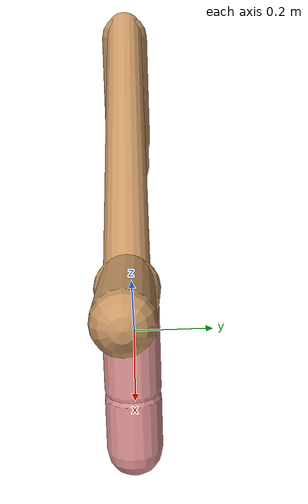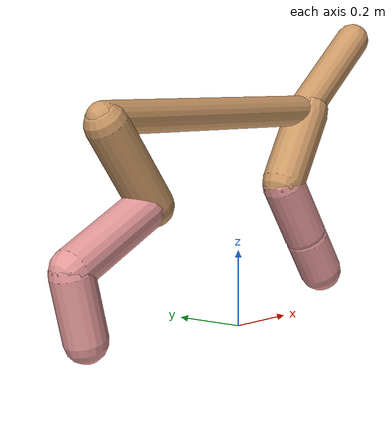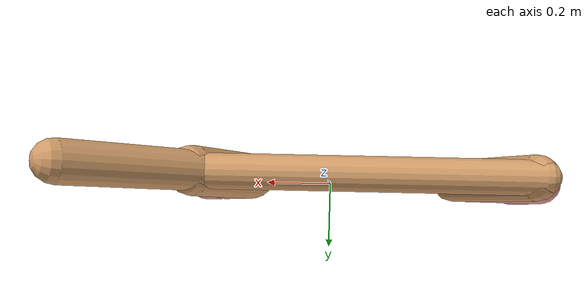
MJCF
<mujoco model="cheetah">
  <compiler angle="radian" coordinate="local" inertiafromgeom="true" settotalmass="14" />
  <default>
    <joint armature=".1" damping=".01" limited="true" solimplimit="0 .8 .03" solreflimit=".02 1" stiffness="8" />
    <geom conaffinity="0" condim="3" contype="1" friction="0.8 .1 .1" rgba="0.8 0.6 .4 1" solimp="0.0 0.8 0.01" solref="0.02 1" />
    <motor ctrllimited="true" ctrlrange="-1 1" />
  </default>
  <size nstack="300000" nuser_geom="1" />
  <option gravity="0 0 -9.81" timestep="0.01" />
  <worldbody>
    <body name="torso" pos="0.0 0.0 0.5593201911781556">
      <joint armature="0" axis="1 0 0" damping="0" limited="false" name="ignorex" pos="0 0 0" stiffness="0" type="slide" />
      <joint armature="0" axis="0 0 1" damping="0" limited="false" name="ignorez" pos="0 0 0" stiffness="0" type="slide" />
      <joint armature="0" axis="0 1 0" damping="0" limited="false" name="ignorey" pos="0 0 0" stiffness="0" type="hinge" />
      <geom fromto="-0.5 0.0 0.0 0.3071017688299933 0.0 0.0" name="torso" size="0.04134811763591109" type="capsule" />
      <geom axisangle="0 1 0 .87" name="head" pos="0.40710176882999327 0.0 0.1" size="0.04679679818087789 0.15" type="capsule" />

      <body name="bthigh" pos="-.5 0 0">
        <joint axis="0 1 0" damping="6" name="bthigh" pos="0 0 0" range="-.52 1.05" stiffness="240" type="hinge" />
        <geom axisangle="0 1 0 -3.8" name="bthigh" pos="0.08945997540289947 0.0 -0.11629796802376932" size="0.05454957255890358 0.1277130743396886" type="capsule" />
        <body name="bshin" pos="0.13891995080579894 0.0 -0.22259593604753863">
          <joint axis="0 1 0" damping="4.5" name="bshin" pos="0 0 0" range="-.785 .785" stiffness="180" type="hinge" />
          <geom axisangle="0 1 0 -2.03" name="bshin" pos="-0.12400493480064483 0.0 -0.06200246740032241" rgba="0.9 0.6 0.6 1" size="0.05454957255890358 0.1321169734548503" type="capsule" />
          <body name="bfoot" pos="-0.24800986960128965 0.0 -0.12400493480064483">
            <joint axis="0 1 0" damping="3" name="bfoot" pos="0 0 0" range="-.4 .785" stiffness="120" type="hinge" />
            <geom axisangle="0 1 0 -.27" name="bfoot" pos="0.026688760450396556 0.0 -0.08629365878961553" rgba="0.9 0.6 0.6 1" size="0.05454957255890358 0.08279330336503951" type="capsule" />
            <inertial mass="10" />
          </body>
        </body>
      </body>
      <body name="fthigh" pos="0.3071017688299933 0.0 0.0">
        <joint axis="0 1 0" damping="4.5" name="fthigh" pos="0 0 0" range="-1.5 0.8" stiffness="180" type="hinge" />
        <geom axisangle="0 1 0 .52" name="fthigh" pos="-0.0576170266922859 0.0 -0.09877204575820438" size="0.0585293057516438 0.10842431955710424" type="capsule" />
        <body name="fshin" pos="-0.1152340533845718 0.0 -0.19754409151640875">
          <joint axis="0 1 0" damping="3" name="fshin" pos="0 0 0" range="-1.2 1.1" stiffness="120" type="hinge" />
          <geom axisangle="0 1 0 -.6" name="fshin" pos="0.0535322116700528 0.0 -0.07412152385084234" rgba="0.9 0.6 0.6 1" size="0.0585293057516438 0.08641336746656428" type="capsule" />
          <body name="ffoot" pos="0.1070644233401056 0.0 -0.14824304770168467">
            <joint axis="0 1 0" damping="1.5" name="ffoot" pos="0 0 0" range="-3.1 -0.3" stiffness="60" type="hinge" />
            <geom axisangle="0 1 0 -.6" name="ffoot" pos="0.038005533809899704 0.0 -0.05911971925984399" rgba="0.9 0.6 0.6 1" size="0.0585293057516438 0.057065431345844346" type="capsule" />
            <inertial mass="10" />
          </body>
        </body>
      </body>
    </body>
  </worldbody>
  <actuator>
    <motor gear="120" joint="bthigh" name="bthigh" />
    <motor gear="90" joint="bshin" name="bshin" />
    <motor gear="60" joint="bfoot" name="bfoot" />
    <motor gear="120" joint="fthigh" name="fthigh" />
    <motor gear="60" joint="fshin" name="fshin" />
    <motor gear="30" joint="ffoot" name="ffoot" />
  </actuator>
</mujoco>
